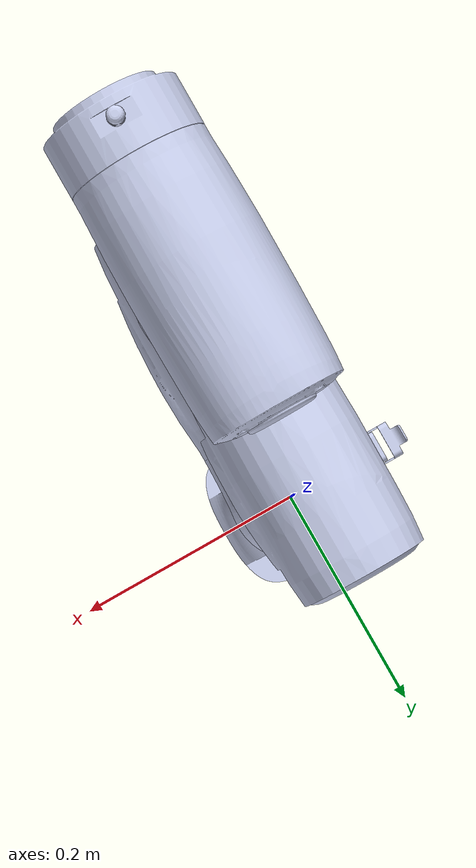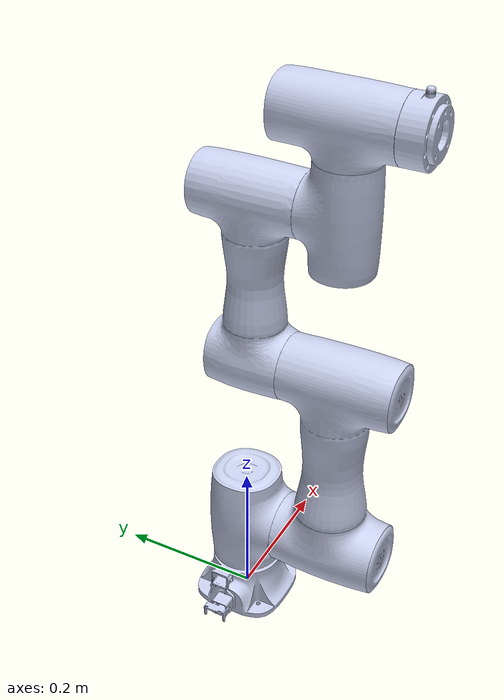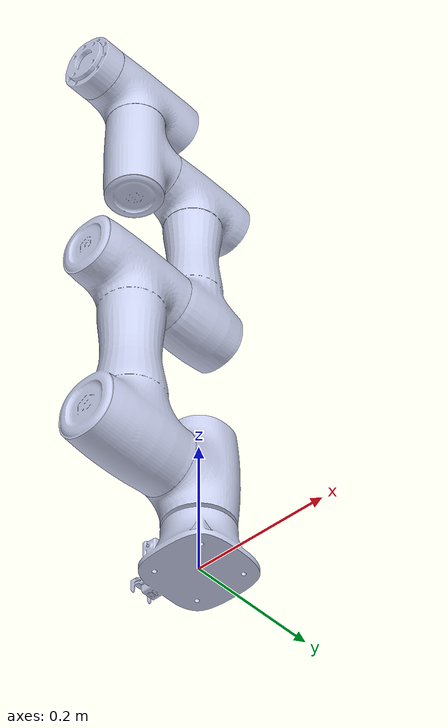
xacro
<?xml version="1.0"?>
<robot xmlns:xacro="http://www.ros.org/wiki/xacro" name="cr3_robot">
    <xacro:arg name="initial_positions_file" default="initial_positions.yaml" />

    <!-- Import cr3_robot urdf file -->
    <xacro:include filename="$(find dobot_rviz)/urdf/cr3_robot.urdf" />

    <!-- Import control_xacro -->
    <xacro:include filename="cr3_robot.ros2_control.xacro" />

    <xacro:cr3_robot_ros2_control name="FakeSystem" initial_positions_file="$(arg initial_positions_file)"/>

</robot>

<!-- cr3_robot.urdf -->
<robot
  name="cr3_robot">  <link
    name="base_link">
    <inertial>
      <origin
        xyz="0.00230818905212046 -0.000732843557555838 0.028289656612971"
        rpy="0 0 0" />
      <mass
        value="0.648931294984644" />
      <inertia
        ixx="0.000749921651777976"
        ixy="4.21801992495725E-08"
        ixz="1.27081371753695E-06"
        iyy="0.000839640950438419"
        iyz="1.61611917342073E-07"
        izz="0.00112778981497252" />
    </inertial>
    <visual>
      <origin
        xyz="0 0 0"
        rpy="0 0 0" />
      <geometry>
        <mesh
          filename="package://dobot_rviz/meshes/cr3/base_link.STL" />
      </geometry>
      <material
        name="">
        <color
          rgba="0.792156862745098 0.819607843137255 0.933333333333333 1" />
      </material>
    </visual>
    <collision>
      <origin
        xyz="0 0 0"
        rpy="0 0 0" />
      <geometry>
        <mesh
          filename="package://dobot_rviz/meshes/cr3/base_link.STL" />
      </geometry>
    </collision>
  </link>  <link
    name="Link1">
    <inertial>
      <origin
        xyz="-3.67781721123111E-05 -0.00394376486631129 0.00364267890020981"
        rpy="0 0 0" />
      <mass
        value="1.31115064359517" />
      <inertia
        ixx="0.00319192385509536"
        ixy="-1.81661180744991E-06"
        ixz="-3.59316770697547E-07"
        iyy="0.00307821666880085"
        iyz="-1.88925967107205E-05"
        izz="0.00190896903282013" />
    </inertial>
    <visual>
      <origin
        xyz="0 0 0"
        rpy="0 0 0" />
      <geometry>
        <mesh
          filename="package://dobot_rviz/meshes/cr3/J1.STL" />
      </geometry>
      <material
        name="">
        <color
          rgba="0.792156862745098 0.819607843137255 0.933333333333333 1" />
      </material>
    </visual>
    <collision>
      <origin
        xyz="0 0 0"
        rpy="0 0 0" />
      <geometry>
        <mesh
          filename="package://dobot_rviz/meshes/cr3/J1.STL" />
      </geometry>
    </collision>
  </link>
  <joint
    name="joint1"
    type="revolute">
    <origin
      xyz="0 0 0.1348"
      rpy="0 0 0" />
    <parent
      link="base_link" />
    <child
      link="Link1" />
    <axis
      xyz="0 0 1" />
    <limit
      lower="-6.28"
      upper="6.28"
      effort="0"
      velocity="0.5236" />
  </joint>
  <link
    name="Link2">
    <inertial>
      <origin
        xyz="-0.129228226099202 1.43480420269969E-05 0.133174339594273"
        rpy="0 0 0" />
      <mass
        value="3.40049600294342" />
      <inertia
        ixx="0.00665284748175434"
        ixy="1.79448081220597E-06"
        ixz="0.000635378334498705"
        iyy="0.0177342976210456"
        iyz="3.48633745916203E-07"
        izz="0.0150462633110018" />
    </inertial>
    <visual>
      <origin
        xyz="0 0 0"
        rpy="0 0 0" />
      <geometry>
        <mesh
          filename="package://dobot_rviz/meshes/cr3/J2.STL" />
      </geometry>
      <material
        name="">
        <color
          rgba="0.792156862745098 0.819607843137255 0.933333333333333 1" />
      </material>
    </visual>
    <collision>
      <origin
        xyz="0 0 0"
        rpy="0 0 0" />
      <geometry>
        <mesh
          filename="package://dobot_rviz/meshes/cr3/J2.STL" />
      </geometry>
    </collision>
  </link>
  <joint
    name="joint2"
    type="revolute">
    <origin
      xyz="0 0 0"
      rpy="1.5708 1.5708 0" />
    <parent
      link="Link1" />
    <child
      link="Link2" />
    <axis
      xyz="0 0 1" />
    <limit
      lower="-6.28"
      upper="6.28"
      effort="0"
      velocity="0.5236" />
  </joint>
  <link
    name="Link3">
    <inertial>
      <origin
        xyz="-0.121267841067619 -5.95979094526938E-07 0.0103431444175778"
        rpy="0 0 0" />
      <mass
        value="2.18803928124499" />
      <inertia
        ixx="0.0031393454782363"
        ixy="2.60060285754048E-07"
        ixz="-0.000151120131479005"
        iyy="0.0236694689770697"
        iyz="3.67396297009222E-08"
        izz="0.0225795743545604" />
    </inertial>
    <visual>
      <origin
        xyz="0 0 0"
        rpy="0 0 0" />
      <geometry>
        <mesh
          filename="package://dobot_rviz/meshes/cr3/J3.STL" />
      </geometry>
      <material
        name="">
        <color
          rgba="0.792156862745098 0.819607843137255 0.933333333333333 1" />
      </material>
    </visual>
    <collision>
      <origin
        xyz="0 0 0"
        rpy="0 0 0" />
      <geometry>
        <mesh
          filename="package://dobot_rviz/meshes/cr3/J3.STL" />
      </geometry>
    </collision>
  </link>
  <joint
    name="joint3"
    type="revolute">
    <origin
      xyz="-0.274 0 0"
      rpy="0 0 0" />
    <parent
      link="Link2" />
    <child
      link="Link3" />
    <axis
      xyz="0 0 1" />
    <limit
      lower="-2.7039"
      upper="2.7039"
      effort="0"
      velocity="0.5236" />
  </joint>
  <link
    name="Link4">
    <inertial>
      <origin
        xyz="1.66290133222139E-07 0.00345100795834197 -0.00287330777509653"
        rpy="0 0 0" />
      <mass
        value="0.842219175919104" />
      <inertia
        ixx="0.00173365879213697"
        ixy="-4.56469972647882E-09"
        ixz="-4.71044121344451E-10"
        iyy="0.000822485798327018"
        iyz="-9.31644060918737E-06"
        izz="0.00169454892249307" />
    </inertial>
    <visual>
      <origin
        xyz="0 0 0"
        rpy="0 0 0" />
      <geometry>
        <mesh
          filename="package://dobot_rviz/meshes/cr3/J4.STL" />
      </geometry>
      <material
        name="">
        <color
          rgba="0.792156862745098 0.819607843137255 0.933333333333333 1" />
      </material>
    </visual>
    <collision>
      <origin
        xyz="0 0 0"
        rpy="0 0 0" />
      <geometry>
        <mesh
          filename="package://dobot_rviz/meshes/cr3/J4.STL" />
      </geometry>
    </collision>
  </link>
  <joint
    name="joint4"
    type="revolute">
    <origin
      xyz="-0.23 0 0.1283"
      rpy="0 0 -1.5708" />
    <parent
      link="Link3" />
    <child
      link="Link4" />
    <axis
      xyz="0 0 1" />
    <limit
      lower="-6.28"
      upper="6.28"
      effort="0"
      velocity="0.5236" />
  </joint>
  <link
    name="Link5">
    <inertial>
      <origin
        xyz="1.66833832862591E-08 -0.00612503201462095 -0.00127182253112346"
        rpy="0 0 0" />
      <mass
        value="0.741136954868999" />
      <inertia
        ixx="0.00212858333835282"
        ixy="-3.05116516563277E-08"
        ixz="1.84588350647225E-08"
        iyy="0.000739514141681889"
        iyz="5.38479499117246E-05"
        izz="0.00208815449098071" />
    </inertial>
    <visual>
      <origin
        xyz="0 0 0"
        rpy="0 0 0" />
      <geometry>
        <mesh
          filename="package://dobot_rviz/meshes/cr3/J5.STL" />
      </geometry>
      <material
        name="">
        <color
          rgba="0.792156862745098 0.819607843137255 0.933333333333333 1" />
      </material>
    </visual>
    <collision>
      <origin
        xyz="0 0 0"
        rpy="0 0 0" />
      <geometry>
        <mesh
          filename="package://dobot_rviz/meshes/cr3/J5.STL" />
      </geometry>
    </collision>
  </link>
  <joint
    name="joint5"
    type="revolute">
    <origin
      xyz="0 -0.116 0"
      rpy="1.5708 0 0" />
    <parent
      link="Link4" />
    <child
      link="Link5" />
    <axis
      xyz="0 0 1" />
    <limit
      lower="-6.28"
      upper="6.28"
      effort="0"
      velocity="0.5236" />
  </joint>
  <link
    name="Link6">
    <inertial>
      <origin
        xyz="4.94378411169622E-11 9.37632286146517E-05 -0.019285436425589"
        rpy="0 0 0" />
      <mass
        value="0.157885369717385" />
      <inertia
        ixx="7.94006759268347E-05"
        ixy="4.66210912267001E-15"
        ixz="2.94413427013248E-14"
        iyy="7.91691792019657E-05"
        iyz="-9.61313747365421E-08"
        izz="0.000130860179835048" />
    </inertial>
    <visual>
      <origin
        xyz="0 0 0"
        rpy="0 0 0" />
      <geometry>
        <mesh
          filename="package://dobot_rviz/meshes/cr3/J6.STL" />
      </geometry>
      <material
        name="">
        <color
          rgba="0.792156862745098 0.819607843137255 0.933333333333333 1" />
      </material>
    </visual>
    <collision>
      <origin
        xyz="0 0 0"
        rpy="0 0 0" />
      <geometry>
        <mesh
          filename="package://dobot_rviz/meshes/cr3/J6.STL" />
      </geometry>
    </collision>
  </link>
  <joint
    name="joint6"
    type="revolute">
    <origin
      xyz="0 0.105 0"
      rpy="-1.5708 0 0" />
    <parent
      link="Link5" />
    <child
      link="Link6" />
    <axis
      xyz="0 0 1" />
    <limit
      lower="-6.28"
      upper="6.28"
      effort="0"
      velocity="0.5236" />
  </joint>
</robot>
